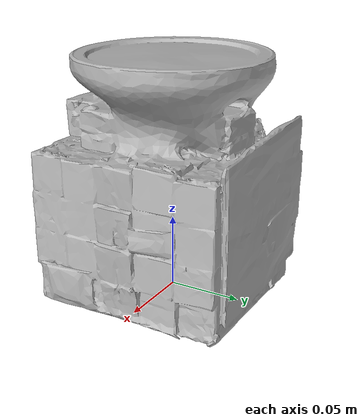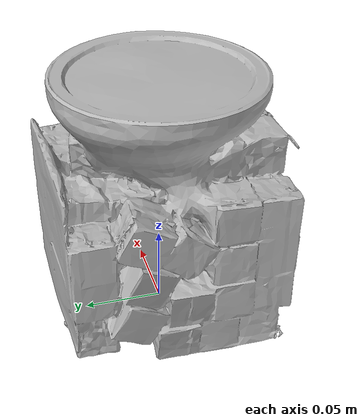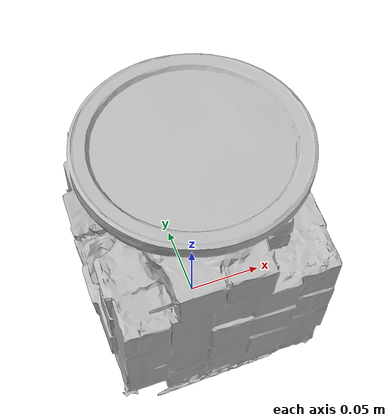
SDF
<?xml version="1.0" ?>
<sdf version='1.8'>
  <model name='ycb_070-a_colored_wood_blocks'>
    <link name='body'>
      <inertial>
        <mass>3.16755457421</mass>
        <pose>0.00176615633 -0.000466626643 0.0731011105 0 0 0</pose>
        <inertia>
          <ixx>0.0104365622696</ixx>
          <ixy>-0.000112453606135</ixy>
          <ixz>9.32373253725e-05</ixz>
          <iyy>0.0101202894836</iyy>
          <iyz>1.26864000782e-05</iyz>
          <izz>0.00833771234049</izz>
        </inertia>
      </inertial>
      <visual name='ycb_070-a_colored_wood_blocks_visual'>
        <pose>-0.019424 -0.009012 -0.000808 0 0 0</pose>
        <geometry>
          <mesh>
            <uri>model://ycb_070-a_colored_wood_blocks/meshes/textured.dae</uri>
          </mesh>
        </geometry>
      </visual>
      <collision name='ycb_070-a_colored_wood_blocks_collision'>
        <pose>-0.019424 -0.009012 -0.000808 0 0 0</pose>
        <geometry>
          <mesh>
            <uri>model://ycb_070-a_colored_wood_blocks/meshes/nontextured.stl</uri>
          </mesh>
        </geometry>
        <max_contacts>10</max_contacts>
        <surface>
          <contact>
            <ode>
              <kp>1e15</kp>
              <kd>1e13</kd>
            </ode>
          </contact>
        </surface>
      </collision>
    </link>
  </model>
</sdf>
